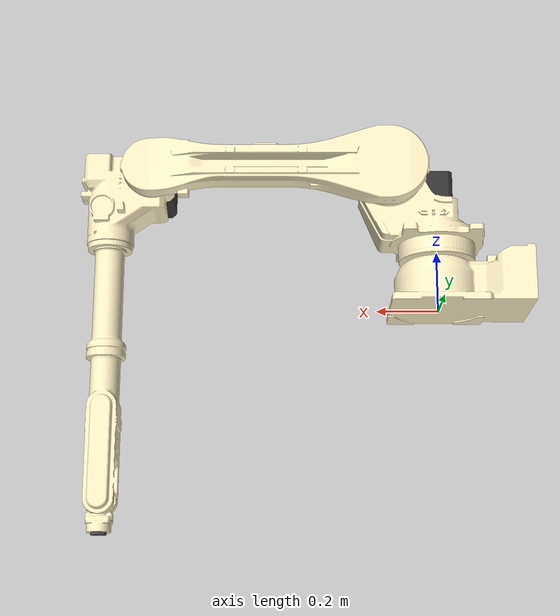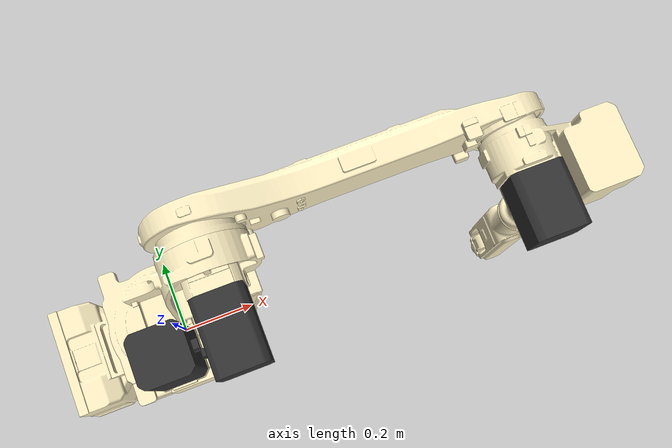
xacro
<?xml version="1.0"?>
<robot name="hdr_robot" xmlns:xacro="http://ros.org/wiki/xacro">
  <material name="ivory">
    <color rgba="1.0 0.945 0.773 1.0" />
  </material>
  <material name="black">
    <color rgba="0.2 0.2 0.2 1.0"/>
  </material>
  <material name="gray">
    <color rgba="0.3 0.3 0.3 1.0"/>
  </material>
  <xacro:property name="mesh_scale" value="0.001" />
  <link name="base_link">
    <visual>
      <geometry>
        <mesh filename="file://$(find hdr_description)/meshes/robots/hdr10l_19/visual/base_body.stl" scale="${mesh_scale} ${mesh_scale} ${mesh_scale}"/>
      </geometry>
      <material name="ivory"/>
    </visual>
    <collision>
      <geometry>
        <mesh filename="file://$(find hdr_description)/meshes/robots/hdr10l_19/collision/base_body.stl" scale="${mesh_scale} ${mesh_scale} ${mesh_scale}"/>
      </geometry>
    </collision>
    <inertial>
      <mass value="44.0197"/>
      <origin xyz="0 0 0" rpy="0 0 0"/>
      <inertia ixx="0.5025" ixy="0" ixz="0" iyy="0.8947" iyz="0" izz="1.1434"/>
    </inertial>
  </link>
  <link name="lower_frame_link">
    <visual>
      <geometry>
        <mesh filename="file://$(find hdr_description)/meshes/robots/hdr10l_19/visual/lower_frame.stl" scale="${mesh_scale} ${mesh_scale} ${mesh_scale}"/>
      </geometry>
      <material name="ivory"/>
    </visual>
    <collision>
      <geometry>
        <mesh filename="file://$(find hdr_description)/meshes/robots/hdr10l_19/collision/lower_frame.stl" scale="${mesh_scale} ${mesh_scale} ${mesh_scale}"/>
      </geometry>
    </collision>
    <inertial>
      <mass value="44.2299"/>
      <origin xyz="0 0 0" rpy="0 0 0"/>
      <inertia ixx="1.0415" ixy="0" ixz="0" iyy="1.3015" iyz="0" izz="1.163"/>
    </inertial>
  </link>
  <link name="upper_frame_link">
    <visual>
      <origin xyz="-0.16 0 -0.4466" rpy="0 0 0"/>
      <geometry>
        <mesh filename="file://$(find hdr_description)/meshes/robots/hdr10l_19/visual/upper_frame.stl" scale="${mesh_scale} ${mesh_scale} ${mesh_scale}"/>
      </geometry>
      <material name="ivory"/>
    </visual>
    <collision>
      <origin xyz="-0.16 0 -0.4466" rpy="0 0 0"/>
      <geometry>
        <mesh filename="file://$(find hdr_description)/meshes/robots/hdr10l_19/collision/upper_frame.stl" scale="${mesh_scale} ${mesh_scale} ${mesh_scale}"/>
      </geometry>
    </collision>
    <inertial>
      <mass value="22.4028"/>
      <origin xyz="0 0 0" rpy="0 0 0"/>
      <inertia ixx="1.8615" ixy="0" ixz="0" iyy="1.9502" iyz="0" izz="0.1485"/>
    </inertial>
  </link>
  <link name="arm_link">
    <visual>
      <origin xyz="-0.16 0 -1.217" rpy="0 0 0"/>
      <geometry>
        <mesh filename="file://$(find hdr_description)/meshes/robots/hdr10l_19/visual/arm.stl" scale="${mesh_scale} ${mesh_scale} ${mesh_scale}"/>
      </geometry>
      <material name="ivory"/>
    </visual>
    <collision>
      <origin xyz="-0.16 0 -1.216" rpy="0 0 0"/>
      <geometry>
        <mesh filename="file://$(find hdr_description)/meshes/robots/hdr10l_19/collision/arm.stl" scale="${mesh_scale} ${mesh_scale} ${mesh_scale}"/>
      </geometry>
    </collision>
    <inertial>
      <mass value="14.2656"/>
      <origin xyz="0 0 0" rpy="0 0 0"/>
      <inertia ixx="0.1949" ixy="0" ixz="0" iyy="0.239" iyz="0" izz="0.1873"/>
    </inertial>
  </link>
  <link name="wrist_body_link">
    <visual>
      <origin xyz="-0.162 0 -1.3565" rpy="0 0 0"/>
      <geometry>
        <mesh filename="file://$(find hdr_description)/meshes/robots/hdr10l_19/visual/wrist_body.stl" scale="${mesh_scale} ${mesh_scale} ${mesh_scale}"/>
      </geometry>
      <material name="ivory"/>
    </visual>
    <collision>
      <origin xyz="-0.142 0 -1.3565" rpy="0 0 0"/>
      <geometry>
        <mesh filename="file://$(find hdr_description)/meshes/robots/hdr10l_19/collision/wrist_body.stl" scale="${mesh_scale} ${mesh_scale} ${mesh_scale}"/>
      </geometry>
    </collision>
    <inertial>
      <mass value="7.0632"/>
      <origin xyz="0 0 0" rpy="0 0 0"/>
      <inertia ixx="0.0244" ixy="0" ixz="0" iyy="0.49" iyz="0" izz="0.49"/>
    </inertial>
  </link>
  <link name="wrist_holder_link">
    <visual>
      <origin xyz="-1.215 0 -1.356" rpy="0 0 0"/>
      <geometry>
        <mesh filename="file://$(find hdr_description)/meshes/robots/hdr10l_19/visual/wrist_holder.stl" scale="${mesh_scale} ${mesh_scale} ${mesh_scale}"/>
      </geometry>
      <material name="ivory"/>
    </visual>
    <collision>
      <origin xyz="-1.215 0 -1.356" rpy="0 0 0"/>
      <geometry>
        <mesh filename="file://$(find hdr_description)/meshes/robots/hdr10l_19/collision/wrist_holder.stl" scale="${mesh_scale} ${mesh_scale} ${mesh_scale}"/>
      </geometry>
    </collision>
    <inertial>
      <mass value="3.8171"/>
      <origin xyz="0 0 0" rpy="0 0 0"/>
      <inertia ixx="0.0046" ixy="0" ixz="0" iyy="0.0097" iyz="0" izz="0.0087"/>
    </inertial>
  </link>
  <link name="flange_link">
    <visual>
      <origin xyz="-1.318 0 -1.356" rpy="0 0 0"/>
      <geometry>
        <mesh filename="file://$(find hdr_description)/meshes/robots/hdr10l_19/visual/flange.stl" scale="${mesh_scale} ${mesh_scale} ${mesh_scale}"/>
      </geometry>
      <material name="gray"/>
    </visual>
    <collision>
      <origin xyz="-1.318 0 -1.356" rpy="0 0 0"/>
      <geometry>
        <mesh filename="file://$(find hdr_description)/meshes/robots/hdr10l_19/collision/flange.stl" scale="${mesh_scale} ${mesh_scale} ${mesh_scale}"/>
      </geometry>
    </collision>
    <inertial>
      <mass value="0.4672"/>
      <origin xyz="0 0 0" rpy="0 0 0"/>
      <inertia ixx="0.0002" ixy="0" ixz="0" iyy="0.0002" iyz="0" izz="0.0002"/>
    </inertial>
  </link>
  <link name="motor_s">
    <visual>
      <geometry>
        <mesh filename="file://$(find hdr_description)/meshes/robots/hdr10l_19/visual/motor_s.stl" scale="${mesh_scale} ${mesh_scale} ${mesh_scale}"/>
      </geometry>
      <material name="black"/>
    </visual>
    <collision>
      <geometry>
        <mesh filename="file://$(find hdr_description)/meshes/robots/hdr10l_19/collision/motor_s.stl" scale="${mesh_scale} ${mesh_scale} ${mesh_scale}"/>
      </geometry>
    </collision>
    <inertial>
      <mass value="0"/>
      <origin xyz="0 0 0" rpy="0 0 0"/>
      <inertia ixx="1e-6" ixy="0" ixz="0" iyy="1e-6" iyz="0" izz="1e-6"/>
    </inertial>
  </link>
  <link name="motor_h">
    <visual>
      <geometry>
        <mesh filename="file://$(find hdr_description)/meshes/robots/hdr10l_19/visual/motor_h.stl" scale="${mesh_scale} ${mesh_scale} ${mesh_scale}"/>
      </geometry>
      <material name="black"/>
    </visual>
    <collision>
      <geometry>
        <mesh filename="file://$(find hdr_description)/meshes/robots/hdr10l_19/collision/motor_h.stl" scale="${mesh_scale} ${mesh_scale} ${mesh_scale}"/>
      </geometry>
    </collision>
    <inertial>
      <mass value="0"/>
      <origin xyz="0 0 0" rpy="0 0 0"/>
      <inertia ixx="1e-6" ixy="0" ixz="0" iyy="1e-6" iyz="0" izz="1e-6"/>
    </inertial>
  </link>
  <link name="motor_v">
    <visual>
      <origin xyz="-0.16 0 -1.21" rpy="0 0 0"/>
      <geometry>
        <mesh filename="file://$(find hdr_description)/meshes/robots/hdr10l_19/visual/motor_v.stl" scale="${mesh_scale} ${mesh_scale} ${mesh_scale}"/>
      </geometry>
      <material name="black"/>
    </visual>
    <collision>
      <origin xyz="-0.16 0 -1.21" rpy="0 0 0"/>
      <geometry>
        <mesh filename="file://$(find hdr_description)/meshes/robots/hdr10l_19/collision/motor_v.stl" scale="${mesh_scale} ${mesh_scale} ${mesh_scale}"/>
      </geometry>
    </collision>
    <inertial>
      <mass value="0"/>
      <origin xyz="0 0 0" rpy="0 0 0"/>
      <inertia ixx="1e-6" ixy="0" ixz="0" iyy="1e-6" iyz="0" izz="1e-6"/>
    </inertial>
  </link>

  <joint name="j1" type="revolute">
    <parent link="base_link"/>
    <child link="lower_frame_link"/>
    <origin xyz="0 0 0" rpy="0 0 0"/>
    <axis xyz="0 0 1"/>
    <limit lower="-3.228" upper="3.228" effort="962.8" velocity="3.665"/>
  </joint>
  <joint name="j2" type="revolute">
    <parent link="lower_frame_link"/>
    <child link="upper_frame_link"/>
    <origin xyz="0.16 0 0.4466" rpy="0 1.5708 0"/>
    <axis xyz="0 -1 0"/>
    <limit lower="-1.221" upper="3.403" effort="1010.9" velocity="3.665"/>
  </joint>
  <joint name="j3" type="revolute">
    <parent link="upper_frame_link"/>
    <child link="arm_link"/>
    <origin xyz="0 0 0.77" rpy="0 0 0"/>
    <axis xyz="0 -1 0"/>
    <limit lower="-1.396" upper="3.142" effort="934.1" velocity="3.84"/>
  </joint>
  <joint name="j4" type="revolute">
    <parent link="arm_link"/>
    <child link="wrist_body_link"/>
    <origin xyz="0 0 0.14" rpy="0 0 0"/>
    <axis xyz="1 0 0"/>
    <limit lower="-3.403" upper="3.403" effort="91.3" velocity="7.33"/>
  </joint>
  <joint name="j5" type="revolute">
    <parent link="wrist_body_link"/>
    <child link="wrist_holder_link"/>
    <origin xyz="1.055 0 0" rpy="0 0 0"/>
    <axis xyz="0 -1 0"/>
    <limit lower="-2.356" upper="2.356" effort="20.6" velocity="7.854"/>
  </joint>
  <joint name="j6" type="revolute">
    <parent link="wrist_holder_link"/>
    <child link="flange_link"/>
    <origin xyz="0.105 0 0" rpy="0 0 0"/>
    <axis xyz="1 0 0"/>
    <limit lower="-6.283" upper="6.283" effort="10.0" velocity="12.566"/>
  </joint>

  <joint name="joint_motor_s" type="fixed">
    <parent link="lower_frame_link"/>
    <child link="motor_s"/>
    <origin xyz="0 0 0" rpy="0 0 0"/>
    <axis xyz="1 0 0"/>
  </joint>
  <joint name="joint_motor_h" type="fixed">
    <parent link="lower_frame_link"/>
    <child link="motor_h"/>
    <origin xyz="0 0 0" rpy="0 0 0"/>
    <axis xyz="1 0 0"/>
  </joint>
  <joint name="joint_motor_v" type="fixed">
    <parent link="arm_link"/>
    <child link="motor_v"/>
    <origin xyz="0 0 0" rpy="0 0 0"/>
    <axis xyz="1 0 0"/>
  </joint>

  <link name="base"/>
  <joint name="base_link-base" type="fixed">
    <origin xyz="0 0 0" rpy="0 0 0"/>
    <parent link="base_link"/>
    <child link="base"/>
  </joint>
  <link name="flange"/>
  <joint name="flange_link-flange" type="fixed">
    <origin xyz="0 0 0" rpy="0 0 0"/>
    <parent link="flange_link"/>
    <child link="flange"/>
  </joint>
  <link name="tool0"/>
  <joint name="flange-tool0" type="fixed">
    <origin xyz="0 0 0" rpy="0 1.5708 0"/>
    <parent link="flange"/>
    <child link="tool0"/>
  </joint>

  <link name="world"/>
  <joint name="world_joint" type="fixed">
    <parent link="world"/>
    <child link="base_link"/>
    <origin xyz="0 0 0" rpy="0 0 0"/>
  </joint>
</robot>
